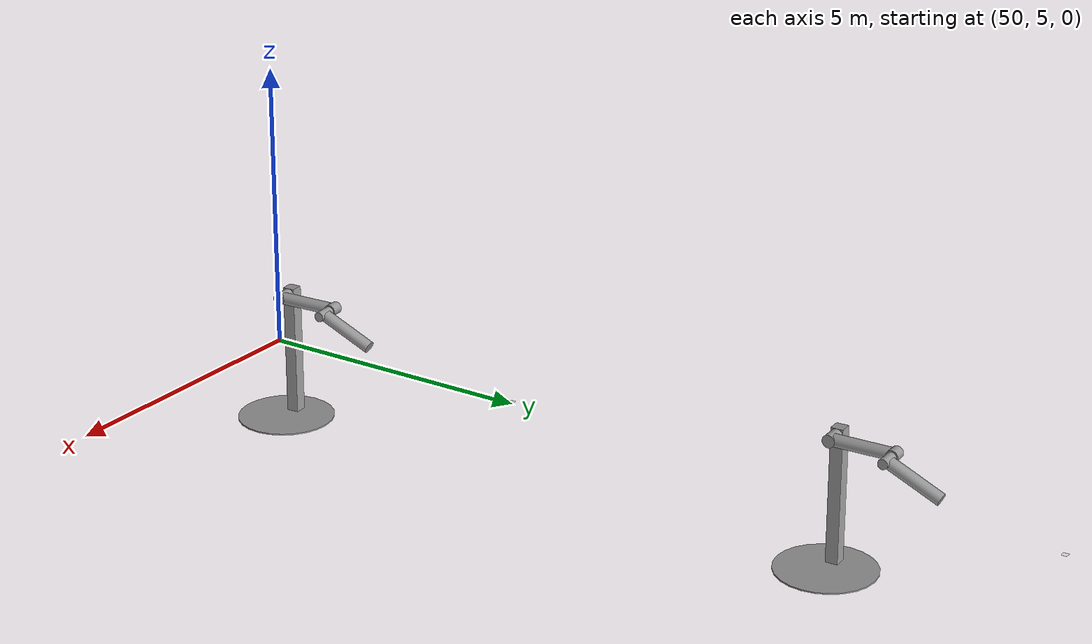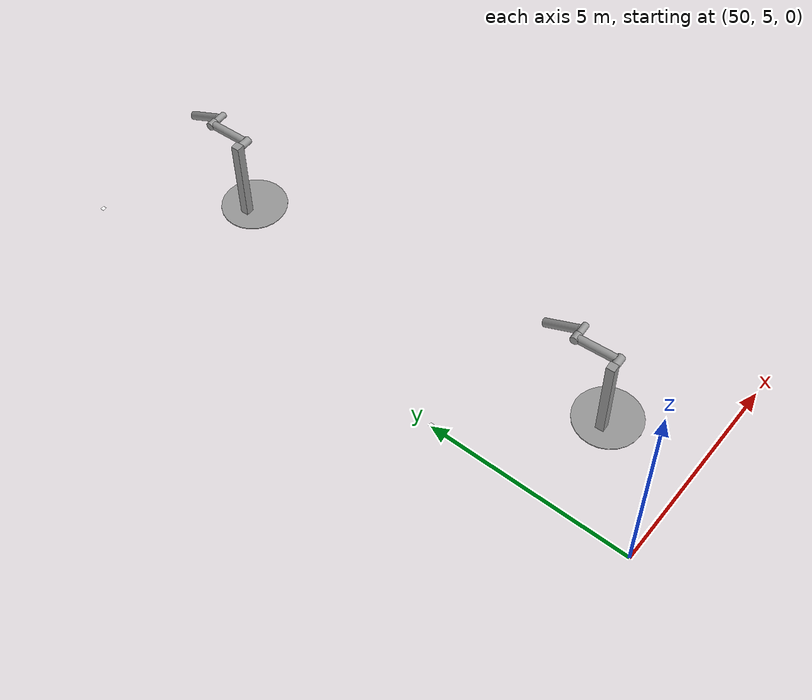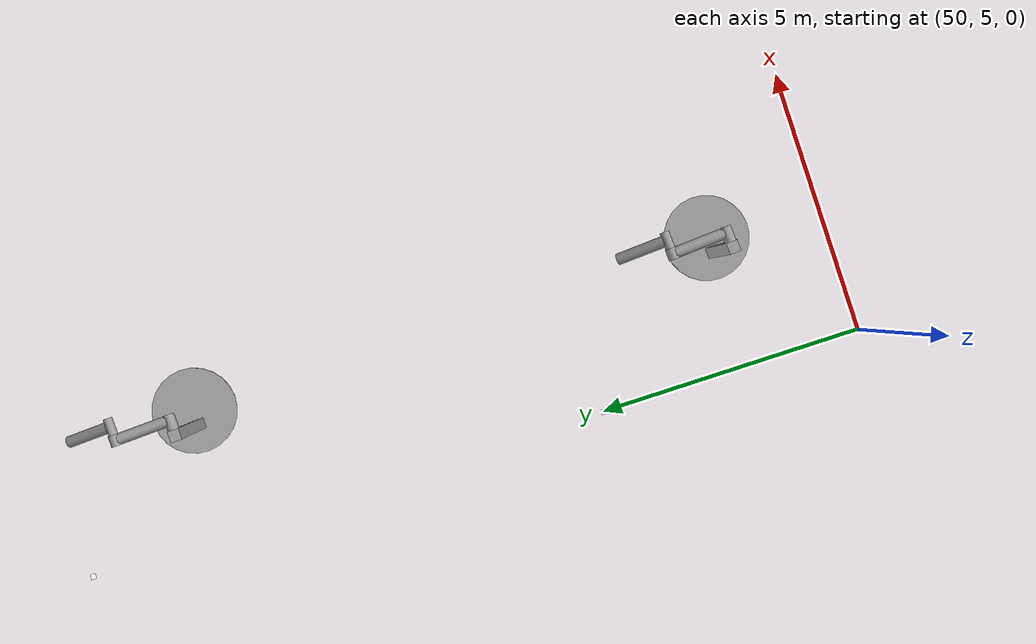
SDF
<sdf version="1.7">
 <world name="factory_ground">
  <model name="marker_3">
   <link name="marker">
    <visual name="visual">
     <geometry><box><size>0.1 0.1 1e-05</size></box></geometry>
     <material>
      <script>
       <uri>model://marker_3/materials/scripts</uri>
       <uri>model://marker_3/materials/textures</uri>
       <name>marker_material3</name>
      </script>
      <ambient>1 1 1 1</ambient>
      <diffuse>1 1 1 1</diffuse>
      <specular>0 0 0 1</specular>
      <emissive>1 1 1 0</emissive>
     </material>
    </visual>
    <collision name="collision"><geometry><box><size>0.1 0.1 1e-05</size></box></geometry></collision>
   </link>
   <link name="marker_pad">
    <pose relative_to="marker">0 0 -1e-05 0 -0 0</pose>
    <visual name="visual">
     <geometry><box><size>0.1 0.1 1e-05</size></box></geometry>
     <material>
      <lighting>1</lighting>
      <script><uri>file://media/materials/scripts/gazebo.material</uri><name>Gazebo/White</name></script>
      <ambient>0.3 0.3 0.3 1</ambient>
      <diffuse>0.7 0.7 0.7 1</diffuse>
      <specular>0.01 0.01 0.01 1</specular>
      <emissive>1 1 1 0</emissive>
     </material>
    </visual>
    <collision name="collision"><geometry><box><size>0.1 0.1 1e-05</size></box></geometry></collision>
   </link>
   <joint name="marker_JOINT_marker_pad" type="revolute">
    <parent>marker</parent>
    <child>marker_pad</child>
    <axis>
     <xyz>0 0 1</xyz>
     <limit><upper>0</upper><lower>0</lower></limit>
     <dynamics><spring_reference>0</spring_reference><spring_stiffness>0</spring_stiffness></dynamics>
    </axis>
   </joint>
   <static>1</static>
   <pose>50 10 0.046333 0 -0 0</pose>
  </model>
  <model name="marker_4">
   <link name="marker">
    <visual name="visual">
     <geometry><box><size>0.1 0.1 1e-05</size></box></geometry>
     <material>
      <script>
       <uri>model://marker_4/materials/scripts</uri>
       <uri>model://marker_4/materials/textures</uri>
       <name>marker_material4</name>
      </script>
      <ambient>1 1 1 1</ambient>
      <diffuse>1 1 1 1</diffuse>
      <specular>0 0 0 1</specular>
      <emissive>1 1 1 0</emissive>
     </material>
    </visual>
    <collision name="collision"><geometry><box><size>0.1 0.1 1e-05</size></box></geometry></collision>
   </link>
   <link name="marker_pad">
    <pose relative_to="marker">0 0 -1e-05 0 -0 0</pose>
    <visual name="visual">
     <geometry><box><size>0.1 0.1 1e-05</size></box></geometry>
     <material>
      <lighting>1</lighting>
      <script><uri>file://media/materials/scripts/gazebo.material</uri><name>Gazebo/White</name></script>
      <ambient>0.3 0.3 0.3 1</ambient>
      <diffuse>0.7 0.7 0.7 1</diffuse>
      <specular>0.01 0.01 0.01 1</specular>
      <emissive>1 1 1 0</emissive>
     </material>
    </visual>
    <collision name="collision"><geometry><box><size>0.1 0.1 1e-05</size></box></geometry></collision>
   </link>
   <joint name="marker_JOINT_marker_pad" type="revolute">
    <parent>marker</parent>
    <child>marker_pad</child>
    <axis>
     <xyz>0 0 1</xyz>
     <limit><upper>0</upper><lower>0</lower></limit>
     <dynamics><spring_reference>0</spring_reference><spring_stiffness>0</spring_stiffness></dynamics>
    </axis>
   </joint>
   <static>1</static>
   <pose>50 20 0.046333 0 -0 0</pose>
  </model>
  <model name="double_pendulum_with_base_clone_3">
   <link name="base">
    <inertial>
     <mass>100</mass>
     <inertia><ixx>1</ixx><ixy>0</ixy><ixz>0</ixz><iyy>1</iyy><iyz>0</iyz><izz>1</izz></inertia>
    </inertial>
    <visual name="vis_plate_on_ground">
     <pose>0 0 0.01 0 -0 0</pose>
     <geometry><cylinder><radius>0.8</radius><length>0.02</length></cylinder></geometry>
     <material>
      <script><uri>file://media/materials/scripts/gazebo.material</uri><name>Gazebo/Grey</name></script>
     </material>
    </visual>
    <visual name="vis_pole">
     <pose>-0.275 0 1.1 0 -0 0</pose>
     <geometry><box><size>0.2 0.2 2.2</size></box></geometry>
     <material>
      <script><uri>file://media/materials/scripts/gazebo.material</uri><name>Gazebo/Grey</name></script>
     </material>
    </visual>
    <collision name="col_plate_on_ground">
     <pose>0 0 0.01 0 -0 0</pose>
     <geometry><cylinder><radius>0.8</radius><length>0.02</length></cylinder></geometry>
    </collision>
    <collision name="col_pole">
     <pose>-0.275 0 1.1 0 -0 0</pose>
     <geometry><box><size>0.2 0.2 2.2</size></box></geometry>
    </collision>
   </link>
   <link name="upper_link">
    <pose>0 0 2.1 -1.5708 0 0</pose>
    <inertial>
     <pose>0 0 0.5 0 -0 0</pose>
     <inertia><ixx>1</ixx><ixy>0</ixy><ixz>0</ixz><iyy>1</iyy><iyz>0</iyz><izz>1</izz></inertia>
     <mass>1</mass>
    </inertial>
    <visual name="vis_upper_joint">
     <pose>-0.05 0 0 3.14159 1.57079 3.14159</pose>
     <geometry><cylinder><radius>0.1</radius><length>0.3</length></cylinder></geometry>
     <material>
      <script><uri>file://media/materials/scripts/gazebo.material</uri><name>Gazebo/Grey</name></script>
     </material>
    </visual>
    <visual name="vis_lower_joint">
     <pose>0 0 1 3.14159 1.57079 3.14159</pose>
     <geometry><cylinder><radius>0.1</radius><length>0.2</length></cylinder></geometry>
     <material>
      <script><uri>file://media/materials/scripts/gazebo.material</uri><name>Gazebo/Grey</name></script>
     </material>
    </visual>
    <visual name="vis_cylinder">
     <pose>0 0 0.5 0 -0 0</pose>
     <geometry><cylinder><radius>0.1</radius><length>0.9</length></cylinder></geometry>
     <material>
      <script><uri>file://media/materials/scripts/gazebo.material</uri><name>Gazebo/Grey</name></script>
     </material>
    </visual>
    <collision name="col_upper_joint">
     <pose>-0.05 0 0 3.14159 1.57079 3.14159</pose>
     <geometry><cylinder><radius>0.1</radius><length>0.3</length></cylinder></geometry>
    </collision>
    <collision name="col_lower_joint">
     <pose>0 0 1 3.14159 1.57079 3.14159</pose>
     <geometry><cylinder><radius>0.1</radius><length>0.2</length></cylinder></geometry>
    </collision>
    <collision name="col_cylinder">
     <pose>0 0 0.5 0 -0 0</pose>
     <geometry><cylinder><radius>0.1</radius><length>0.9</length></cylinder></geometry>
    </collision>
   </link>
   <link name="lower_link">
    <pose>0.25 1 2.1 -2 0 0</pose>
    <inertial>
     <pose>0 0 0.5 0 -0 0</pose>
     <inertia><ixx>1</ixx><ixy>0</ixy><ixz>0</ixz><iyy>1</iyy><iyz>0</iyz><izz>1</izz></inertia>
     <mass>1</mass>
    </inertial>
    <visual name="vis_lower_joint">
     <pose>0 0 0 3.14159 1.57079 3.14159</pose>
     <geometry><cylinder><radius>0.08</radius><length>0.3</length></cylinder></geometry>
     <material>
      <script><uri>file://media/materials/scripts/gazebo.material</uri><name>Gazebo/Grey</name></script>
     </material>
    </visual>
    <visual name="vis_cylinder">
     <pose>0 0 0.5 0 -0 0</pose>
     <geometry><cylinder><radius>0.1</radius><length>0.9</length></cylinder></geometry>
     <material>
      <script><uri>file://media/materials/scripts/gazebo.material</uri><name>Gazebo/Grey</name></script>
     </material>
    </visual>
    <collision name="col_lower_joint">
     <pose>0 0 0 3.14159 1.57079 3.14159</pose>
     <geometry><cylinder><radius>0.08</radius><length>0.3</length></cylinder></geometry>
    </collision>
    <collision name="col_cylinder">
     <pose>0 0 0.5 0 -0 0</pose>
     <geometry><cylinder><radius>0.1</radius><length>0.9</length></cylinder></geometry>
    </collision>
   </link>
   <joint name="upper_joint" type="revolute">
    <parent>base</parent>
    <child>upper_link</child>
    <axis>
     <xyz>1 0 0</xyz>
     <limit><lower>-1e+16</lower><upper>1e+16</upper></limit>
     <dynamics><spring_reference>0</spring_reference><spring_stiffness>0</spring_stiffness></dynamics>
    </axis>
   </joint>
   <joint name="lower_joint" type="revolute">
    <parent>upper_link</parent>
    <child>lower_link</child>
    <axis>
     <xyz>1 0 0</xyz>
     <limit><lower>-1e+16</lower><upper>1e+16</upper></limit>
     <dynamics><spring_reference>0</spring_reference><spring_stiffness>0</spring_stiffness></dynamics>
    </axis>
   </joint>
   <pose>52.4943 7.17302 0.00826 0.000519 -0.000115 0.063768</pose>
  </model>
  <model name="double_pendulum_with_base_clone_7">
   <link name="base">
    <inertial>
     <mass>100</mass>
     <inertia><ixx>1</ixx><ixy>0</ixy><ixz>0</ixz><iyy>1</iyy><iyz>0</iyz><izz>1</izz></inertia>
    </inertial>
    <visual name="vis_plate_on_ground">
     <pose>0 0 0.01 0 -0 0</pose>
     <geometry><cylinder><radius>0.8</radius><length>0.02</length></cylinder></geometry>
     <material>
      <script><uri>file://media/materials/scripts/gazebo.material</uri><name>Gazebo/Grey</name></script>
     </material>
    </visual>
    <visual name="vis_pole">
     <pose>-0.275 0 1.1 0 -0 0</pose>
     <geometry><box><size>0.2 0.2 2.2</size></box></geometry>
     <material>
      <script><uri>file://media/materials/scripts/gazebo.material</uri><name>Gazebo/Grey</name></script>
     </material>
    </visual>
    <collision name="col_plate_on_ground">
     <pose>0 0 0.01 0 -0 0</pose>
     <geometry><cylinder><radius>0.8</radius><length>0.02</length></cylinder></geometry>
    </collision>
    <collision name="col_pole">
     <pose>-0.275 0 1.1 0 -0 0</pose>
     <geometry><box><size>0.2 0.2 2.2</size></box></geometry>
    </collision>
   </link>
   <link name="upper_link">
    <pose>0 0 2.1 -1.5708 0 0</pose>
    <inertial>
     <pose>0 0 0.5 0 -0 0</pose>
     <inertia><ixx>1</ixx><ixy>0</ixy><ixz>0</ixz><iyy>1</iyy><iyz>0</iyz><izz>1</izz></inertia>
     <mass>1</mass>
    </inertial>
    <visual name="vis_upper_joint">
     <pose>-0.05 0 0 3.14159 1.57079 3.14159</pose>
     <geometry><cylinder><radius>0.1</radius><length>0.3</length></cylinder></geometry>
     <material>
      <script><uri>file://media/materials/scripts/gazebo.material</uri><name>Gazebo/Grey</name></script>
     </material>
    </visual>
    <visual name="vis_lower_joint">
     <pose>0 0 1 3.14159 1.57079 3.14159</pose>
     <geometry><cylinder><radius>0.1</radius><length>0.2</length></cylinder></geometry>
     <material>
      <script><uri>file://media/materials/scripts/gazebo.material</uri><name>Gazebo/Grey</name></script>
     </material>
    </visual>
    <visual name="vis_cylinder">
     <pose>0 0 0.5 0 -0 0</pose>
     <geometry><cylinder><radius>0.1</radius><length>0.9</length></cylinder></geometry>
     <material>
      <script><uri>file://media/materials/scripts/gazebo.material</uri><name>Gazebo/Grey</name></script>
     </material>
    </visual>
    <collision name="col_upper_joint">
     <pose>-0.05 0 0 3.14159 1.57079 3.14159</pose>
     <geometry><cylinder><radius>0.1</radius><length>0.3</length></cylinder></geometry>
    </collision>
    <collision name="col_lower_joint">
     <pose>0 0 1 3.14159 1.57079 3.14159</pose>
     <geometry><cylinder><radius>0.1</radius><length>0.2</length></cylinder></geometry>
    </collision>
    <collision name="col_cylinder">
     <pose>0 0 0.5 0 -0 0</pose>
     <geometry><cylinder><radius>0.1</radius><length>0.9</length></cylinder></geometry>
    </collision>
   </link>
   <link name="lower_link">
    <pose>0.25 1 2.1 -2 0 0</pose>
    <inertial>
     <pose>0 0 0.5 0 -0 0</pose>
     <inertia><ixx>1</ixx><ixy>0</ixy><ixz>0</ixz><iyy>1</iyy><iyz>0</iyz><izz>1</izz></inertia>
     <mass>1</mass>
    </inertial>
    <visual name="vis_lower_joint">
     <pose>0 0 0 3.14159 1.57079 3.14159</pose>
     <geometry><cylinder><radius>0.08</radius><length>0.3</length></cylinder></geometry>
     <material>
      <script><uri>file://media/materials/scripts/gazebo.material</uri><name>Gazebo/Grey</name></script>
     </material>
    </visual>
    <visual name="vis_cylinder">
     <pose>0 0 0.5 0 -0 0</pose>
     <geometry><cylinder><radius>0.1</radius><length>0.9</length></cylinder></geometry>
     <material>
      <script><uri>file://media/materials/scripts/gazebo.material</uri><name>Gazebo/Grey</name></script>
     </material>
    </visual>
    <collision name="col_lower_joint">
     <pose>0 0 0 3.14159 1.57079 3.14159</pose>
     <geometry><cylinder><radius>0.08</radius><length>0.3</length></cylinder></geometry>
    </collision>
    <collision name="col_cylinder">
     <pose>0 0 0.5 0 -0 0</pose>
     <geometry><cylinder><radius>0.1</radius><length>0.9</length></cylinder></geometry>
    </collision>
   </link>
   <joint name="upper_joint" type="revolute">
    <parent>base</parent>
    <child>upper_link</child>
    <axis>
     <xyz>1 0 0</xyz>
     <limit><lower>-1e+16</lower><upper>1e+16</upper></limit>
     <dynamics><spring_reference>0</spring_reference><spring_stiffness>0</spring_stiffness></dynamics>
    </axis>
   </joint>
   <joint name="lower_joint" type="revolute">
    <parent>upper_link</parent>
    <child>lower_link</child>
    <axis>
     <xyz>1 0 0</xyz>
     <limit><lower>-1e+16</lower><upper>1e+16</upper></limit>
     <dynamics><spring_reference>0</spring_reference><spring_stiffness>0</spring_stiffness></dynamics>
    </axis>
   </joint>
   <pose>52.3664 17.2558 0.013534 0.000523 -0.000102 0.042372</pose>
  </model>
 </world>
</sdf>
